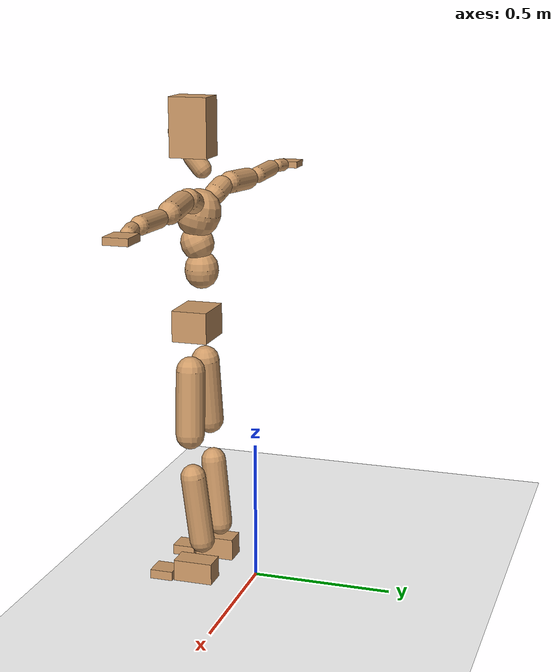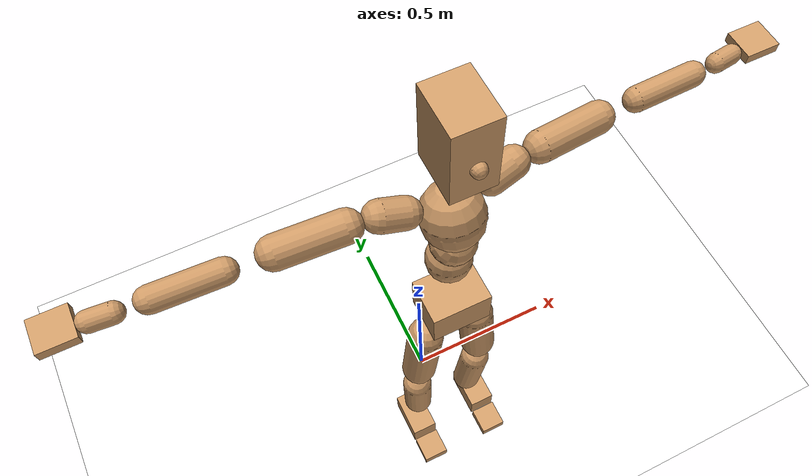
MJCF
<mujoco model="humanoid">
  <option integrator="implicitfast" />

  <visual>
    <global offwidth="1280" offheight="960" />
    <headlight active="1" ambient="0.34 0.34 0.34" diffuse="0.5 0.5 0.5" />
  </visual>

  <default>
    <joint damping="2" stiffness="2" armature="0.01" limited="true" solimplimit="0 .99 .01" />
    <geom condim="1" friction="0.7 0.005 0.0001" solimp=".99 .99 .003" solref="0.015 1" margin="0.001" rgba="0.8 0.6 .4 1" />
    <default class="smplcontact">
      <geom condim="3" friction="1. 0.005 0.0001" solref="0.015 1" solimp="0.98 0.98 0.001" priority="1" />
    </default>
    <default class="stiff_medium">
      <joint stiffness="10" />
    </default>
    <default class="stiff_medium_higher">
      <joint stiffness="50" />
    </default>
    <default class="stiff_high">
      <joint stiffness="100" />
    </default>
  </default>

  <asset>
    <texture type="skybox" builtin="gradient" rgb1="0.99 0.99 0.99" rgb2="0.608 0.828 0.892" width="100" />
    <texture builtin="flat" height="1278" mark="cross" markrgb="1 1 1" name="texgeom" random="0.01" rgb1="0.8 0.6 0.4" rgb2="0.8 0.6 0.4" type="cube" width="127" />
    <texture name="texplane" type="2d" builtin="checker" markrgb="1 1 1" rgb1="0.756 0.772 0.76" rgb2="0.6 0.6 0.6" width="100" height="100" />
    <material name="MatPlane" reflectance="0.5" texture="texplane" texrepeat="1 1" texuniform="true" />
    <material name="geom" texture="texgeom" texuniform="true" />
  </asset>

  <worldbody>
    <light name="tracking_light" pos="0 0 7" dir="0 0 -1" directional="true" cutoff="100" exponent="1" diffuse="1 1 1" specular="0.1 0.1 0.1" mode="trackcom" />
    <camera name="back" pos="0 3 2.4" xyaxes="-1 0 0 0 -1 2" mode="trackcom" />
    <camera name="side" pos="-3 0 2.4" xyaxes="0 -1 0 1 0 2" mode="trackcom" />
    <camera name="front_side" pos="-2.8 -2.8 0.8" xyaxes="0.5 -0.5 0 0.1 0.1 1" mode="trackcom" />
    <geom condim="3" name="floor" pos="0 0 0" rgba="1 1 1 1" size="100 100 .2" type="plane" material="MatPlane" />
    <body name="Pelvis" pos="-0.0018 -0.2233 0.951662" euler="90 0 0">
      <site name="Pelvis" size="0.01" />
      <freejoint name="Pelvis" />
      <geom type="box" pos="-0.0000 -0.0121 -0.0055" size="0.082515 0.0557304 0.0640668" quat="1.0000 0.0000 0.0000 0.0000" density="3165.830099" name="Pelvis" />
      <body name="L_Hip" pos="0.0708964 -0.0932364 -0.00693663">
        <joint name="L_Hip_x" type="hinge" pos="0 0 0" axis="1 0 0" stiffness="10" range="-160.0 22.92" class="stiff_medium" damping="15" />
        <joint name="L_Hip_y" type="hinge" pos="0 0 0" axis="0 1 0" stiffness="10" range="-70.0 70.0" class="stiff_medium" damping="10" />
        <joint name="L_Hip_z" type="hinge" pos="0 0 0" axis="0 0 1" stiffness="10" range="-28.65 90.0" class="stiff_medium" damping="10" />
        <geom type="capsule" density="2040.816327" fromto="0.00703864 -0.0765069 -0.000918083 0.0279505 -0.306232 -0.00367233" size="0.0517502" name="L_Hip" />
        <body name="L_Knee" pos="0.0349892 -0.382739 -0.00459042">
          <joint name="L_Knee_x" type="hinge" pos="0 0 0" axis="1 0 0" range="-5.16 171.89" damping="8" />
          <joint name="L_Knee_y" type="hinge" pos="0 0 0" axis="0 1 0" range="-4.58 6.88" damping="8" />
          <joint name="L_Knee_z" type="hinge" pos="0 0 0" axis="0 0 1" range="-6.88 4.58" damping="8" />
          <geom type="capsule" density="1234.567901" fromto="-0.00275425 -0.0811994 -0.0088748 -0.011119 -0.324797 -0.0357032" size="0.0455233" name="L_Knee" />
          <body name="L_Ankle" pos="-0.0138733 -0.405997 -0.044578">
            <joint name="L_Ankle_x" type="hinge" pos="0 0 0" axis="1 0 0" range="-45.84 45.84" class="stiff_medium" damping="6" />
            <joint name="L_Ankle_y" type="hinge" pos="0 0 0" axis="0 1 0" range="-74.48 22.92" class="stiff_medium" damping="3" />
            <joint name="L_Ankle_z" type="hinge" pos="0 0 0" axis="0 0 1" range="-4.58 4.58" class="stiff_medium" damping="6" />
            <geom type="box" pos="0.0237682 -0.0243802 0.0246862" size="0.0406428 0.039044 0.0715246" quat="1.0000 0.0000 0.0000 0.0000" density="449.071558" name="L_Ankle" class="smplcontact" />
            <body name="L_Toe" pos="0.0269304 -0.0569212 0.121697">
              <joint name="L_Toe_x" type="hinge" pos="0 0 0" axis="1 0 0" range="-91.67 22.92" />
              <joint name="L_Toe_y" type="hinge" pos="0 0 0" axis="0 1 0" range="-4.58 4.58" />
              <joint name="L_Toe_z" type="hinge" pos="0 0 0" axis="0 0 1" range="-4.58 4.58" />
              <geom type="box" pos="-0.00306028 0.00561051 0.0252983" size="0.0402221 0.0168293 0.0417367" quat="1.0000 0.0000 0.0000 0.0000" density="423.206892" name="L_Toe" class="smplcontact" />
            </body>
          </body>
        </body>
      </body>
      <body name="R_Hip" pos="-0.0690603 -0.0923184 -0.0043864">
        <joint name="R_Hip_x" type="hinge" pos="0 0 0" axis="1 0 0" stiffness="10" range="-160.0 22.92" class="stiff_medium" damping="15" />
        <joint name="R_Hip_y" type="hinge" pos="0 0 0" axis="0 1 0" stiffness="10" range="-70.0 70.0" class="stiff_medium" damping="10" />
        <joint name="R_Hip_z" type="hinge" pos="0 0 0" axis="0 0 1" stiffness="10" range="-90.0 28.65" class="stiff_medium" damping="10" />
        <geom type="capsule" density="2040.816327" fromto="-0.00785471 -0.0780371 -0.00183617 -0.0312148 -0.31225 -0.00724266" size="0.0509929" name="R_Hip" />
        <body name="R_Knee" pos="-0.0390695 -0.390287 -0.00907882">
          <joint name="R_Knee_x" type="hinge" pos="0 0 0" axis="1 0 0" range="-5.16 171.89" damping="8" />
          <joint name="R_Knee_y" type="hinge" pos="0 0 0" axis="0 1 0" range="-6.88 4.58" damping="8" />
          <joint name="R_Knee_z" type="hinge" pos="0 0 0" axis="0 0 1" range="-4.58 6.88" damping="8" />
          <geom type="capsule" density="1234.567901" fromto="0.0032643 -0.0813014 -0.00867079 0.0128532 -0.325103 -0.0344791" size="0.0455233" name="R_Knee" />
          <body name="R_Ankle" pos="0.0161175 -0.406405 -0.0431499">
            <joint name="R_Ankle_x" type="hinge" pos="0 0 0" axis="1 0 0" range="-45.84 45.84" class="stiff_medium" damping="6" />
            <joint name="R_Ankle_y" type="hinge" pos="0 0 0" axis="0 1 0" range="-22.92 74.48" class="stiff_medium" damping="3" />
            <joint name="R_Ankle_z" type="hinge" pos="0 0 0" axis="0 0 1" range="-4.58 4.58" class="stiff_medium" damping="6" />
            <geom type="box" pos="-0.021626 -0.0177496 0.0261144" size="0.0406428 0.0402221 0.0727868" quat="1.0000 0.0000 0.0000 0.0000" density="434.700981" name="R_Ankle" class="smplcontact" />
            <body name="R_Toe" pos="-0.0259103 -0.0490664 0.125777">
              <joint name="R_Toe_x" type="hinge" pos="0 0 0" axis="1 0 0" range="-91.67 22.92" />
              <joint name="R_Toe_y" type="hinge" pos="0 0 0" axis="0 1 0" range="-4.58 4.58" />
              <joint name="R_Toe_z" type="hinge" pos="0 0 0" axis="0 0 1" range="-4.58 4.58" />
              <geom type="box" pos="0.00428439 0.00459042 0.0231561" size="0.0403062 0.0181757 0.0414843" quat="1.0000 0.0000 0.0000 0.0000" density="407.384095" name="R_Toe" class="smplcontact" />
            </body>
          </body>
        </body>
      </body>
      <body name="Torso" pos="-0.00255023 0.11119 -0.0272365">
        <joint name="Torso_x" type="hinge" pos="0 0 0" axis="1 0 0" range="-25.78 57.3" class="stiff_medium" damping="15" />
        <joint name="Torso_y" type="hinge" pos="0 0 0" axis="0 1 0" range="-57.3 57.3" class="stiff_high" damping="20" />
        <joint name="Torso_z" type="hinge" pos="0 0 0" axis="0 0 1" range="-34.38 34.38" class="stiff_high" damping="20" />
        <geom type="capsule" density="2040.816327" fromto="0.00255023 0.0620216 0.000510046 0.00306028 0.0757929 0.000612055" size="0.0593583" name="Torso" />
        <body name="Spine" pos="0.00561051 0.137916 0.0011221">
          <joint name="Spine_x" type="hinge" pos="0 0 0" axis="1 0 0" stiffness="10" range="-25.78 57.3" class="stiff_medium" damping="15" />
          <joint name="Spine_y" type="hinge" pos="0 0 0" axis="0 1 0" stiffness="10" range="-57.3 57.3" class="stiff_high" damping="8" />
          <joint name="Spine_z" type="hinge" pos="0 0 0" axis="0 0 1" stiffness="20" range="-34.38 34.38" class="stiff_high" damping="12" />
          <geom type="capsule" density="2040.816327" fromto="0.000714065 0.0242782 0.0116291 0.000816074 0.0296847 0.0142813" size="0.0582777" name="Spine" />
          <body name="Chest" pos="0.00153014 0.0539629 0.0259103">
            <joint name="Chest_x" type="hinge" pos="0 0 0" axis="1 0 0" stiffness="10" range="-25.78 57.3" class="stiff_medium" damping="15" />
            <joint name="Chest_y" type="hinge" pos="0 0 0" axis="0 1 0" stiffness="10" range="-57.3 57.3" class="stiff_high" damping="8" />
            <joint name="Chest_z" type="hinge" pos="0 0 0" axis="0 0 1" stiffness="20" range="-34.38 34.38" class="stiff_high" damping="12" />
            <geom type="capsule" density="2040.816327" fromto="-0.000918083 0.0695703 -0.0176476 -0.00102009 0.0849737 -0.021626" size="0.0773433" name="Chest" />
            <body name="Neck" pos="-0.00285626 0.218198 -0.043762">
              <joint name="Neck_x" type="hinge" pos="0 0 0" axis="1 0 0" range="-28.65 57.3" class="stiff_medium_higher" damping="10" />
              <joint name="Neck_y" type="hinge" pos="0 0 0" axis="0 1 0" range="-40.11 40.11" class="stiff_medium_higher" damping="10" />
              <joint name="Neck_z" type="hinge" pos="0 0 0" axis="0 0 1" range="-40.11 40.11" class="stiff_medium_higher" damping="10" />
              <geom type="capsule" density="1000" fromto="0.00102009 0.0132612 0.010507 0.00418238 0.0530448 0.0419258" size="0.0336544" name="Neck" />
              <body name="Head" pos="0.00530448 0.066306 0.0523307">
                <joint name="Head_x" type="hinge" pos="0 0 0" axis="1 0 0" range="-28.65 57.3" class="stiff_medium_higher" damping="2" />
                <joint name="Head_y" type="hinge" pos="0 0 0" axis="0 1 0" range="-40.11 40.11" class="stiff_medium_higher" damping="2" />
                <joint name="Head_z" type="hinge" pos="0 0 0" axis="0 0 1" range="-40.11 40.11" class="stiff_medium_higher" damping="2" />
                <geom type="box" pos="-0.00428439 0.0893601 -0.0118331" size="0.0540129 0.102856 0.0677389" quat="1.0000 0.0000 0.0000 0.0000" density="1018.069894" name="Head" />
                <geom type="capsule" name="nose" size="0.017826 0.00891301" pos="0 0.0714065 0.0510046" quat="1 0 0 0" mass="0" contype="0" conaffinity="0" />
              </body>
            </body>
            <body name="L_Thorax" pos="0.0803833 0.124145 -0.0347852">
              <joint name="L_Thorax_x" type="hinge" pos="0 0 0" axis="1 0 0" range="-10.89 4.58" class="stiff_medium_higher" damping="20" />
              <joint name="L_Thorax_y" type="hinge" pos="0 0 0" axis="0 1 0" range="-28.65 17.19" class="stiff_medium_higher" damping="20" />
              <joint name="L_Thorax_z" type="hinge" pos="0 0 0" axis="0 0 1" range="-31.51 40.11" class="stiff_medium_higher" damping="20" />
              <geom type="capsule" density="1000" fromto="0.0185657 0.00622256 -0.00183617 0.0742627 0.0248903 -0.00724266" size="0.039075" name="L_Thorax" />
              <body name="L_Shoulder" pos="0.0928284 0.0311128 -0.00907882">
                <joint name="L_Shoulder_x" type="hinge" pos="0 0 0" axis="1 0 0" range="-97.4 97.4" class="stiff_medium" damping="6" />
                <joint name="L_Shoulder_y" type="hinge" pos="0 0 0" axis="0 1 0" range="-108.86 80.21" class="stiff_medium" damping="6" />
                <joint name="L_Shoulder_z" type="hinge" pos="0 0 0" axis="0 0 1" range="-97.4 85.94" class="stiff_medium" damping="6" />
                <geom type="capsule" density="1000" fromto="0.0529428 -0.00265224 -0.00561051 0.211873 -0.0104049 -0.022442" size="0.038775" name="L_Shoulder" />
                <body name="L_Elbow" pos="0.264816 -0.0130572 -0.0280525">
                  <joint name="L_Elbow_x" type="hinge" pos="0 0 0" axis="1 0 0" range="-17.19 4.58" damping="5" />
                  <joint name="L_Elbow_y" type="hinge" pos="0 0 0" axis="0 1 0" range="-180.0 17.19" damping="5" />
                  <joint name="L_Elbow_z" type="hinge" pos="0 0 0" axis="0 0 1" range="-100.84 4.58" damping="5" />
                  <geom type="capsule" density="1000" fromto="0.0508006 0.00183617 -0.000204018 0.203406 0.00734467 -0.000918083" size="0.030375" name="L_Elbow" />
                  <body name="L_Wrist" pos="0.254207 0.00918083 -0.00122411">
                    <joint name="L_Wrist_x" type="hinge" pos="0 0 0" axis="1 0 0" range="-180.0 22.92" />
                    <joint name="L_Wrist_y" type="hinge" pos="0 0 0" axis="0 1 0" range="-17.19 17.19" />
                    <joint name="L_Wrist_z" type="hinge" pos="0 0 0" axis="0 0 1" range="-22.92 22.92" />
                    <geom type="capsule" density="1000" fromto="0.0171376 -0.00163215 -0.00306028 0.0685502 -0.0066306 -0.0122411" size="0.02385" name="L_Wrist" class="smplcontact" />
                    <body name="L_Hand" pos="0.0856878 -0.00836476 -0.0151994">
                      <joint name="L_Hand_x" type="hinge" pos="0 0 0" axis="1 0 0" range="-17.19 17.19" />
                      <joint name="L_Hand_y" type="hinge" pos="0 0 0" axis="0 1 0" range="-51.57 51.57" />
                      <joint name="L_Hand_z" type="hinge" pos="0 0 0" axis="0 0 1" range="-91.67 91.67" />
                      <geom type="box" pos="0.0502906 0.00102009 -0.00591654" size="0.043875 0.01185 0.04035" quat="1.0000 0.0000 0.0000 0.0000" density="400.552564" name="L_Hand" class="smplcontact" />
                    </body>
                  </body>
                </body>
              </body>
            </body>
            <body name="R_Thorax" pos="-0.0834436 0.121187 -0.0393756">
              <joint name="R_Thorax_x" type="hinge" pos="0 0 0" axis="1 0 0" range="-10.89 4.58" class="stiff_medium_higher" damping="20" />
              <joint name="R_Thorax_y" type="hinge" pos="0 0 0" axis="0 1 0" range="-17.19 28.65" class="stiff_medium_higher" damping="20" />
              <joint name="R_Thorax_z" type="hinge" pos="0 0 0" axis="0 0 1" range="-40.11 31.51" class="stiff_medium_higher" damping="20" />
              <geom type="capsule" density="1000" fromto="-0.0195858 0.0066306 -0.00183617 -0.0783431 0.0265224 -0.00744667" size="0.038325" name="R_Thorax" />
              <body name="R_Shoulder" pos="-0.0979289 0.033255 -0.00928284">
                <joint name="R_Shoulder_x" type="hinge" pos="0 0 0" axis="1 0 0" range="-97.4 97.4" class="stiff_medium" damping="6" />
                <joint name="R_Shoulder_y" type="hinge" pos="0 0 0" axis="0 1 0" range="-80.21 108.86" class="stiff_medium" damping="6" />
                <joint name="R_Shoulder_z" type="hinge" pos="0 0 0" axis="0 0 1" range="-85.94 97.4" class="stiff_medium" damping="6" />
                <geom type="capsule" density="1000" fromto="-0.0517187 -0.00275425 -0.0043864 -0.207079 -0.010915 -0.0174436" size="0.039825" name="R_Shoulder" />
                <body name="R_Elbow" pos="-0.258797 -0.0135672 -0.02183">
                  <joint name="R_Elbow_x" type="hinge" pos="0 0 0" axis="1 0 0" range="-17.19 4.58" damping="5" />
                  <joint name="R_Elbow_y" type="hinge" pos="0 0 0" axis="0 1 0" range="-17.19 180.0" damping="5" />
                  <joint name="R_Elbow_z" type="hinge" pos="0 0 0" axis="0 0 1" range="-4.58 100.84" damping="5" />
                  <geom type="capsule" density="1000" fromto="-0.0521267 0.00163215 -0.0011221 -0.208303 0.00632457 -0.00448841" size="0.0306" name="R_Elbow" />
                  <body name="R_Wrist" pos="-0.26043 0.00795672 -0.00571252">
                    <joint name="R_Wrist_x" type="hinge" pos="0 0 0" axis="1 0 0" range="-180.0 22.92" />
                    <joint name="R_Wrist_y" type="hinge" pos="0 0 0" axis="0 1 0" range="-17.19 17.19" />
                    <joint name="R_Wrist_z" type="hinge" pos="0 0 0" axis="0 0 1" range="-22.92 22.92" />
                    <geom type="capsule" density="1000" fromto="-0.0172396 -0.00122411 -0.00214219 -0.0690603 -0.00499845 -0.00846677" size="0.02445" name="R_Wrist" class="smplcontact" />
                    <body name="R_Hand" pos="-0.0862998 -0.00622256 -0.010507">
                      <joint name="R_Hand_x" type="hinge" pos="0 0 0" axis="1 0 0" range="-17.19 17.19" />
                      <joint name="R_Hand_y" type="hinge" pos="0 0 0" axis="0 1 0" range="-51.57 51.57" />
                      <joint name="R_Hand_z" type="hinge" pos="0 0 0" axis="0 0 1" range="-91.67 91.67" />
                      <geom type="box" pos="-0.0471283 -0.000918083 -0.00805873" size="0.042675 0.0123 0.04095" quat="1.0000 0.0000 0.0000 0.0000" density="403.679611" name="R_Hand" class="smplcontact" />
                    </body>
                  </body>
                </body>
              </body>
            </body>
          </body>
        </body>
      </body>
    </body>
  </worldbody>
  <actuator>
    <general name="L_Hip_x" joint="L_Hip_x" biastype="affine" gainprm="287.33006409732246" biasprm="-215.3247604770444 -180 -2.0" ctrllimited="true" ctrlrange="-1 1" forcerange="-360 360" />
    <general name="L_Hip_y" joint="L_Hip_y" biastype="affine" gainprm="219.9114857512855" biasprm="0.0 -180 -2.0" ctrllimited="true" ctrlrange="-1 1" forcerange="-360 360" />
    <general name="L_Hip_z" joint="L_Hip_z" biastype="affine" gainprm="186.3749841742145" biasprm="96.3683546488669 -180 -2.0" ctrllimited="true" ctrlrange="-1 1" forcerange="-360 360" />
    <general name="L_Knee_x" joint="L_Knee_x" biastype="affine" gainprm="278.10948965903646" biasprm="261.8988715665131 -180 -2.0" ctrllimited="true" ctrlrange="-1 1" forcerange="-360 360" />
    <general name="L_Knee_y" joint="L_Knee_y" biastype="affine" gainprm="18.001325905069514" biasprm="3.612831551628262 -180 -2.0" ctrllimited="true" ctrlrange="-1 1" forcerange="-360 360" />
    <general name="L_Knee_z" joint="L_Knee_z" biastype="affine" gainprm="18.001325905069514" biasprm="-3.612831551628262 -180 -2.0" ctrllimited="true" ctrlrange="-1 1" forcerange="-360 360" />
    <general name="L_Ankle_x" joint="L_Ankle_x" biastype="affine" gainprm="72.00530362027807" biasprm="0.0 -90 -2.0" ctrllimited="true" ctrlrange="-1 1" forcerange="-180 180" />
    <general name="L_Ankle_y" joint="L_Ankle_y" biastype="affine" gainprm="76.49778111491148" biasprm="-40.49512930477244 -90 -2.0" ctrllimited="true" ctrlrange="-1 1" forcerange="-180 180" />
    <general name="L_Ankle_z" joint="L_Ankle_z" biastype="affine" gainprm="7.1942471767206255" biasprm="0.0 -90 -2.0" ctrllimited="true" ctrlrange="-1 1" forcerange="-180 180" />
    <general name="L_Toe_x" joint="L_Toe_x" biastype="affine" gainprm="71.99902043497087" biasprm="-43.19689898685965 -72 -0.8" ctrllimited="true" ctrlrange="-1 1" forcerange="-144 144" />
    <general name="L_Toe_y" joint="L_Toe_y" biastype="affine" gainprm="5.755397741376501" biasprm="0.0 -72 -0.8" ctrllimited="true" ctrlrange="-1 1" forcerange="-144 144" />
    <general name="L_Toe_z" joint="L_Toe_z" biastype="affine" gainprm="5.755397741376501" biasprm="0.0 -72 -0.8" ctrllimited="true" ctrlrange="-1 1" forcerange="-144 144" />
    <general name="R_Hip_x" joint="R_Hip_x" biastype="affine" gainprm="287.33006409732246" biasprm="-215.3247604770444 -180 -2.0" ctrllimited="true" ctrlrange="-1 1" forcerange="-360 360" />
    <general name="R_Hip_y" joint="R_Hip_y" biastype="affine" gainprm="219.9114857512855" biasprm="0.0 -180 -2.0" ctrllimited="true" ctrlrange="-1 1" forcerange="-360 360" />
    <general name="R_Hip_z" joint="R_Hip_z" biastype="affine" gainprm="186.3749841742145" biasprm="-96.3683546488669 -180 -2.0" ctrllimited="true" ctrlrange="-1 1" forcerange="-360 360" />
    <general name="R_Knee_x" joint="R_Knee_x" biastype="affine" gainprm="278.10948965903646" biasprm="261.8988715665131 -180 -2.0" ctrllimited="true" ctrlrange="-1 1" forcerange="-360 360" />
    <general name="R_Knee_y" joint="R_Knee_y" biastype="affine" gainprm="18.001325905069514" biasprm="-3.612831551628262 -180 -2.0" ctrllimited="true" ctrlrange="-1 1" forcerange="-360 360" />
    <general name="R_Knee_z" joint="R_Knee_z" biastype="affine" gainprm="18.001325905069514" biasprm="3.612831551628262 -180 -2.0" ctrllimited="true" ctrlrange="-1 1" forcerange="-360 360" />
    <general name="R_Ankle_x" joint="R_Ankle_x" biastype="affine" gainprm="72.00530362027807" biasprm="0.0 -90 -2.0" ctrllimited="true" ctrlrange="-1 1" forcerange="-180 180" />
    <general name="R_Ankle_y" joint="R_Ankle_y" biastype="affine" gainprm="76.49778111491148" biasprm="40.49512930477244 -90 -2.0" ctrllimited="true" ctrlrange="-1 1" forcerange="-180 180" />
    <general name="R_Ankle_z" joint="R_Ankle_z" biastype="affine" gainprm="7.1942471767206255" biasprm="0.0 -90 -2.0" ctrllimited="true" ctrlrange="-1 1" forcerange="-180 180" />
    <general name="R_Toe_x" joint="R_Toe_x" biastype="affine" gainprm="71.99902043497087" biasprm="-43.19689898685965 -72 -0.8" ctrllimited="true" ctrlrange="-1 1" forcerange="-144 144" />
    <general name="R_Toe_y" joint="R_Toe_y" biastype="affine" gainprm="5.755397741376501" biasprm="0.0 -72 -0.8" ctrllimited="true" ctrlrange="-1 1" forcerange="-144 144" />
    <general name="R_Toe_z" joint="R_Toe_z" biastype="affine" gainprm="5.755397741376501" biasprm="0.0 -72 -0.8" ctrllimited="true" ctrlrange="-1 1" forcerange="-144 144" />
    <general name="Torso_x" joint="Torso_x" biastype="affine" gainprm="174.00234510682668" biasprm="66.0153336274335 -240 -4.0" ctrllimited="true" ctrlrange="-1 1" forcerange="-360 360" />
    <general name="Torso_y" joint="Torso_y" biastype="affine" gainprm="240.0176787342602" biasprm="0.0 -240 -4.0" ctrllimited="true" ctrlrange="-1 1" forcerange="-360 360" />
    <general name="Torso_z" joint="Torso_z" biastype="affine" gainprm="144.01060724055614" biasprm="0.0 -240 -4.0" ctrllimited="true" ctrlrange="-1 1" forcerange="-360 360" />
    <general name="Spine_x" joint="Spine_x" biastype="affine" gainprm="174.00234510682668" biasprm="66.0153336274335 -240 -4.0" ctrllimited="true" ctrlrange="-1 1" forcerange="-360 360" />
    <general name="Spine_y" joint="Spine_y" biastype="affine" gainprm="240.0176787342602" biasprm="0.0 -240 -4.0" ctrllimited="true" ctrlrange="-1 1" forcerange="-360 360" />
    <general name="Spine_z" joint="Spine_z" biastype="affine" gainprm="144.01060724055614" biasprm="0.0 -240 -4.0" ctrllimited="true" ctrlrange="-1 1" forcerange="-360 360" />
    <general name="Chest_x" joint="Chest_x" biastype="affine" gainprm="174.00234510682668" biasprm="66.0153336274335 -240 -4.0" ctrllimited="true" ctrlrange="-1 1" forcerange="-360 360" />
    <general name="Chest_y" joint="Chest_y" biastype="affine" gainprm="240.0176787342602" biasprm="0.0 -240 -4.0" ctrllimited="true" ctrlrange="-1 1" forcerange="-360 360" />
    <general name="Chest_z" joint="Chest_z" biastype="affine" gainprm="144.01060724055614" biasprm="0.0 -240 -4.0" ctrllimited="true" ctrlrange="-1 1" forcerange="-360 360" />
    <general name="Neck_x" joint="Neck_x" biastype="affine" gainprm="27.00198885760427" biasprm="9.000662952534757 -36 -0.8" ctrllimited="true" ctrlrange="-1 1" forcerange="-72 72" />
    <general name="Neck_y" joint="Neck_y" biastype="affine" gainprm="25.20185626709732" biasprm="0.0 -36 -0.8" ctrllimited="true" ctrlrange="-1 1" forcerange="-72 72" />
    <general name="Neck_z" joint="Neck_z" biastype="affine" gainprm="25.20185626709732" biasprm="0.0 -36 -0.8" ctrllimited="true" ctrlrange="-1 1" forcerange="-72 72" />
    <general name="Head_x" joint="Head_x" biastype="affine" gainprm="18.001325905069514" biasprm="6.000441968356505 -24 -0.8" ctrllimited="true" ctrlrange="-1 1" forcerange="-48 48" />
    <general name="Head_y" joint="Head_y" biastype="affine" gainprm="16.801237511398213" biasprm="0.0 -24 -0.8" ctrllimited="true" ctrlrange="-1 1" forcerange="-48 48" />
    <general name="Head_z" joint="Head_z" biastype="affine" gainprm="16.801237511398213" biasprm="0.0 -24 -0.8" ctrllimited="true" ctrlrange="-1 1" forcerange="-48 48" />
    <general name="L_Thorax_x" joint="L_Thorax_x" biastype="affine" gainprm="16.200146117011364" biasprm="-6.6078165480505335 -120 -1.6" ctrllimited="true" ctrlrange="-1 1" forcerange="-240 240" />
    <general name="L_Thorax_y" joint="L_Thorax_y" biastype="affine" gainprm="48.00353574685204" biasprm="-12.00088393671301 -120 -1.6" ctrllimited="true" ctrlrange="-1 1" forcerange="-240 240" />
    <general name="L_Thorax_z" joint="L_Thorax_z" biastype="affine" gainprm="75.00028861670033" biasprm="9.00589894029074 -120 -1.6" ctrllimited="true" ctrlrange="-1 1" forcerange="-240 240" />
    <general name="L_Shoulder_x" joint="L_Shoulder_x" biastype="affine" gainprm="81.5976331892389" biasprm="0.0 -48 -1.6" ctrllimited="true" ctrlrange="-1 1" forcerange="-96 96" />
    <general name="L_Shoulder_y" joint="L_Shoulder_y" biastype="affine" gainprm="79.19745640189629" biasprm="-12.00088393671301 -48 -1.6" ctrllimited="true" ctrlrange="-1 1" forcerange="-96 96" />
    <general name="L_Shoulder_z" joint="L_Shoulder_z" biastype="affine" gainprm="76.79727961455369" biasprm="-4.800353574685214 -48 -1.6" ctrllimited="true" ctrlrange="-1 1" forcerange="-96 96" />
    <general name="L_Elbow_x" joint="L_Elbow_x" biastype="affine" gainprm="13.67849441372996" biasprm="-7.923096672353461 -72 -0.8" ctrllimited="true" ctrlrange="-1 1" forcerange="-144 144" />
    <general name="L_Elbow_y" joint="L_Elbow_y" biastype="affine" gainprm="123.89813107227425" biasprm="-102.29653998619085 -72 -0.8" ctrllimited="true" ctrlrange="-1 1" forcerange="-144 144" />
    <general name="L_Elbow_z" joint="L_Elbow_z" biastype="affine" gainprm="66.23733950828719" biasprm="-60.4819417669107 -72 -0.8" ctrllimited="true" ctrlrange="-1 1" forcerange="-144 144" />
    <general name="L_Wrist_x" joint="L_Wrist_x" biastype="affine" gainprm="21.24973270888136" biasprm="-16.449379134196157 -12 -0.8" ctrllimited="true" ctrlrange="-1 1" forcerange="-24 24" />
    <general name="L_Wrist_y" joint="L_Wrist_y" biastype="affine" gainprm="3.6002651810139037" biasprm="0.0 -12 -0.8" ctrllimited="true" ctrlrange="-1 1" forcerange="-24 24" />
    <general name="L_Wrist_z" joint="L_Wrist_z" biastype="affine" gainprm="4.800353574685205" biasprm="0.0 -12 -0.8" ctrllimited="true" ctrlrange="-1 1" forcerange="-24 24" />
    <general name="L_Hand_x" joint="L_Hand_x" biastype="affine" gainprm="3.6002651810139037" biasprm="0.0 -12 -0.8" ctrllimited="true" ctrlrange="-1 1" forcerange="-24 24" />
    <general name="L_Hand_y" joint="L_Hand_y" biastype="affine" gainprm="10.800795543041708" biasprm="0.0 -12 -0.8" ctrllimited="true" ctrlrange="-1 1" forcerange="-24 24" />
    <general name="L_Hand_z" joint="L_Hand_z" biastype="affine" gainprm="19.199319903638422" biasprm="0.0 -12 -0.8" ctrllimited="true" ctrlrange="-1 1" forcerange="-24 24" />
    <general name="R_Thorax_x" joint="R_Thorax_x" biastype="affine" gainprm="16.200146117011364" biasprm="-6.6078165480505335 -120 -1.6" ctrllimited="true" ctrlrange="-1 1" forcerange="-240 240" />
    <general name="R_Thorax_y" joint="R_Thorax_y" biastype="affine" gainprm="48.00353574685204" biasprm="12.000883936713002 -120 -1.6" ctrllimited="true" ctrlrange="-1 1" forcerange="-240 240" />
    <general name="R_Thorax_z" joint="R_Thorax_z" biastype="affine" gainprm="75.00028861670033" biasprm="-9.00589894029074 -120 -1.6" ctrllimited="true" ctrlrange="-1 1" forcerange="-240 240" />
    <general name="R_Shoulder_x" joint="R_Shoulder_x" biastype="affine" gainprm="81.5976331892389" biasprm="0.0 -48 -1.6" ctrllimited="true" ctrlrange="-1 1" forcerange="-96 96" />
    <general name="R_Shoulder_y" joint="R_Shoulder_y" biastype="affine" gainprm="79.19745640189629" biasprm="12.00088393671301 -48 -1.6" ctrllimited="true" ctrlrange="-1 1" forcerange="-96 96" />
    <general name="R_Shoulder_z" joint="R_Shoulder_z" biastype="affine" gainprm="76.79727961455369" biasprm="4.800353574685204 -48 -1.6" ctrllimited="true" ctrlrange="-1 1" forcerange="-96 96" />
    <general name="R_Elbow_x" joint="R_Elbow_x" biastype="affine" gainprm="13.67849441372996" biasprm="-7.923096672353461 -72 -0.8" ctrllimited="true" ctrlrange="-1 1" forcerange="-144 144" />
    <general name="R_Elbow_y" joint="R_Elbow_y" biastype="affine" gainprm="123.89813107227425" biasprm="102.29653998619085 -72 -0.8" ctrllimited="true" ctrlrange="-1 1" forcerange="-144 144" />
    <general name="R_Elbow_z" joint="R_Elbow_z" biastype="affine" gainprm="66.23733950828719" biasprm="60.481941766910694 -72 -0.8" ctrllimited="true" ctrlrange="-1 1" forcerange="-144 144" />
    <general name="R_Wrist_x" joint="R_Wrist_x" biastype="affine" gainprm="21.24973270888136" biasprm="-16.449379134196157 -12 -0.8" ctrllimited="true" ctrlrange="-1 1" forcerange="-24 24" />
    <general name="R_Wrist_y" joint="R_Wrist_y" biastype="affine" gainprm="3.6002651810139037" biasprm="0.0 -12 -0.8" ctrllimited="true" ctrlrange="-1 1" forcerange="-24 24" />
    <general name="R_Wrist_z" joint="R_Wrist_z" biastype="affine" gainprm="4.800353574685205" biasprm="0.0 -12 -0.8" ctrllimited="true" ctrlrange="-1 1" forcerange="-24 24" />
    <general name="R_Hand_x" joint="R_Hand_x" biastype="affine" gainprm="3.6002651810139037" biasprm="0.0 -12 -0.8" ctrllimited="true" ctrlrange="-1 1" forcerange="-24 24" />
    <general name="R_Hand_y" joint="R_Hand_y" biastype="affine" gainprm="10.800795543041708" biasprm="0.0 -12 -0.8" ctrllimited="true" ctrlrange="-1 1" forcerange="-24 24" />
    <general name="R_Hand_z" joint="R_Hand_z" biastype="affine" gainprm="19.199319903638422" biasprm="0.0 -12 -0.8" ctrllimited="true" ctrlrange="-1 1" forcerange="-24 24" />
  </actuator>
  <contact>
    <exclude body1="Torso" body2="Chest" />
    <exclude body1="Head" body2="Chest" />
    <exclude body1="R_Knee" body2="R_Toe" />
    <exclude body1="R_Knee" body2="L_Ankle" />
    <exclude body1="R_Knee" body2="L_Toe" />
    <exclude body1="L_Knee" body2="L_Toe" />
    <exclude body1="L_Knee" body2="R_Ankle" />
    <exclude body1="L_Knee" body2="R_Toe" />
    <exclude body1="L_Shoulder" body2="Chest" />
    <exclude body1="R_Shoulder" body2="Chest" />
  </contact>
  <sensor>
    <framelinvel name="sensor_Pelvis_framelinvel" objtype="xbody" objname="Pelvis" />
    <framelinvel name="sensor_L_Hip_framelinvel" objtype="xbody" objname="L_Hip" />
    <framelinvel name="sensor_L_Knee_framelinvel" objtype="xbody" objname="L_Knee" />
    <framelinvel name="sensor_L_Ankle_framelinvel" objtype="xbody" objname="L_Ankle" />
    <framelinvel name="sensor_L_Toe_framelinvel" objtype="xbody" objname="L_Toe" />
    <framelinvel name="sensor_R_Hip_framelinvel" objtype="xbody" objname="R_Hip" />
    <framelinvel name="sensor_R_Knee_framelinvel" objtype="xbody" objname="R_Knee" />
    <framelinvel name="sensor_R_Ankle_framelinvel" objtype="xbody" objname="R_Ankle" />
    <framelinvel name="sensor_R_Toe_framelinvel" objtype="xbody" objname="R_Toe" />
    <framelinvel name="sensor_Torso_framelinvel" objtype="xbody" objname="Torso" />
    <framelinvel name="sensor_Spine_framelinvel" objtype="xbody" objname="Spine" />
    <framelinvel name="sensor_Chest_framelinvel" objtype="xbody" objname="Chest" />
    <framelinvel name="sensor_Neck_framelinvel" objtype="xbody" objname="Neck" />
    <framelinvel name="sensor_Head_framelinvel" objtype="xbody" objname="Head" />
    <framelinvel name="sensor_L_Thorax_framelinvel" objtype="xbody" objname="L_Thorax" />
    <framelinvel name="sensor_L_Shoulder_framelinvel" objtype="xbody" objname="L_Shoulder" />
    <framelinvel name="sensor_L_Elbow_framelinvel" objtype="xbody" objname="L_Elbow" />
    <framelinvel name="sensor_L_Wrist_framelinvel" objtype="xbody" objname="L_Wrist" />
    <framelinvel name="sensor_L_Hand_framelinvel" objtype="xbody" objname="L_Hand" />
    <framelinvel name="sensor_R_Thorax_framelinvel" objtype="xbody" objname="R_Thorax" />
    <framelinvel name="sensor_R_Shoulder_framelinvel" objtype="xbody" objname="R_Shoulder" />
    <framelinvel name="sensor_R_Elbow_framelinvel" objtype="xbody" objname="R_Elbow" />
    <framelinvel name="sensor_R_Wrist_framelinvel" objtype="xbody" objname="R_Wrist" />
    <framelinvel name="sensor_R_Hand_framelinvel" objtype="xbody" objname="R_Hand" />
    <frameangvel name="sensor_Pelvis_frameangvel" objtype="xbody" objname="Pelvis" />
    <frameangvel name="sensor_L_Hip_frameangvel" objtype="xbody" objname="L_Hip" />
    <frameangvel name="sensor_L_Knee_frameangvel" objtype="xbody" objname="L_Knee" />
    <frameangvel name="sensor_L_Ankle_frameangvel" objtype="xbody" objname="L_Ankle" />
    <frameangvel name="sensor_L_Toe_frameangvel" objtype="xbody" objname="L_Toe" />
    <frameangvel name="sensor_R_Hip_frameangvel" objtype="xbody" objname="R_Hip" />
    <frameangvel name="sensor_R_Knee_frameangvel" objtype="xbody" objname="R_Knee" />
    <frameangvel name="sensor_R_Ankle_frameangvel" objtype="xbody" objname="R_Ankle" />
    <frameangvel name="sensor_R_Toe_frameangvel" objtype="xbody" objname="R_Toe" />
    <frameangvel name="sensor_Torso_frameangvel" objtype="xbody" objname="Torso" />
    <frameangvel name="sensor_Spine_frameangvel" objtype="xbody" objname="Spine" />
    <frameangvel name="sensor_Chest_frameangvel" objtype="xbody" objname="Chest" />
    <frameangvel name="sensor_Neck_frameangvel" objtype="xbody" objname="Neck" />
    <frameangvel name="sensor_Head_frameangvel" objtype="xbody" objname="Head" />
    <frameangvel name="sensor_L_Thorax_frameangvel" objtype="xbody" objname="L_Thorax" />
    <frameangvel name="sensor_L_Shoulder_frameangvel" objtype="xbody" objname="L_Shoulder" />
    <frameangvel name="sensor_L_Elbow_frameangvel" objtype="xbody" objname="L_Elbow" />
    <frameangvel name="sensor_L_Wrist_frameangvel" objtype="xbody" objname="L_Wrist" />
    <frameangvel name="sensor_L_Hand_frameangvel" objtype="xbody" objname="L_Hand" />
    <frameangvel name="sensor_R_Thorax_frameangvel" objtype="xbody" objname="R_Thorax" />
    <frameangvel name="sensor_R_Shoulder_frameangvel" objtype="xbody" objname="R_Shoulder" />
    <frameangvel name="sensor_R_Elbow_frameangvel" objtype="xbody" objname="R_Elbow" />
    <frameangvel name="sensor_R_Wrist_frameangvel" objtype="xbody" objname="R_Wrist" />
    <frameangvel name="sensor_R_Hand_frameangvel" objtype="xbody" objname="R_Hand" />
    <subtreelinvel name="Chest_subtreelinvel" body="Chest" />
    <gyro name="Pelvis_gyro" site="Pelvis" />
  </sensor>
</mujoco>
